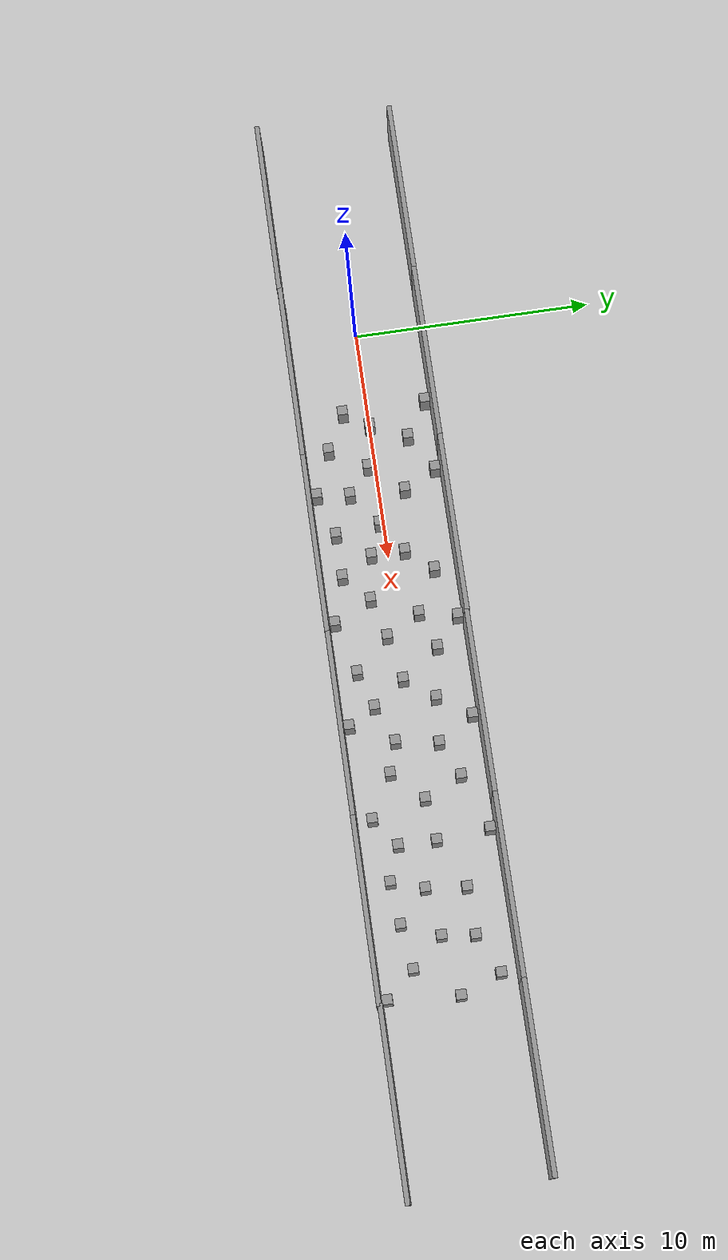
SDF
<sdf version="1.6">
 <world name="default">
  <plugin filename="gz-sim-physics-system" name="gz::sim::systems::Physics"/>
  <plugin filename="gz-sim-sensors-system" name="gz::sim::systems::Sensors">
   <render_engine>ogre2</render_engine>
  </plugin>
  <plugin filename="gz-sim-imu-system" name="gz::sim::systems::Imu"/>
  <plugin filename="gz-sim-scene-broadcaster-system" name="gz::sim::systems::SceneBroadcaster"/>
  <plugin filename="gz-sim-user-commands-system" name="gz::sim::systems::UserCommands"/>
  <light name="sun" type="directional">
   <pose>0 0 10 0 -0 0</pose>
   <diffuse>0.8 0.8 0.8 1</diffuse>
   <specular>0.2 0.2 0.2 1</specular>
   <attenuation>
    <range>1000</range>
    <constant>0.9</constant>
    <linear>0.01</linear>
    <quadratic>0.001</quadratic>
   </attenuation>
   <direction>-0.5 0.1 -0.9</direction>
  </light>
  <model name="ground_plane">
   <static>1</static>
   <link name="link">
    <collision name="collision">
     <geometry><plane><normal>0 0 1</normal><size>100 100</size></plane></geometry>
     <surface><friction><ode><mu>1000</mu><mu2>1000</mu2></ode></friction></surface>
    </collision>
    <visual name="visual">
     <cast_shadows>0</cast_shadows>
     <geometry><plane><normal>0 0 1</normal><size>100 100</size></plane></geometry>
     <material>
      <script><uri>file://media/materials/scripts/gazebo.material</uri><name>Gazebo/Grey</name></script>
     </material>
    </visual>
    <velocity_decay><linear>0</linear><angular>0</angular></velocity_decay>
   </link>
  </model>
  <physics name="default_physics" default="0" type="ode">
   <max_step_size>0.001</max_step_size>
   <real_time_factor>0.1</real_time_factor>
   <real_time_update_rate>100</real_time_update_rate>
  </physics>
  <scene><ambient>0.4 0.4 0.4 1</ambient><background>0.7 0.7 0.7 1</background><shadows>0</shadows></scene>
  <spherical_coordinates>
   <surface_model>EARTH_WGS84</surface_model>
   <latitude_deg>0</latitude_deg>
   <longitude_deg>0</longitude_deg>
   <elevation>0</elevation>
   <heading_deg>0</heading_deg>
  </spherical_coordinates>
  <model name="grey_wall">
   <static>1</static>
   <link name="link">
    <pose>0 0 1.4 0 -0 0</pose>
    <collision name="collision"><geometry><box><size>7.5 0.2 2.8</size></box></geometry></collision>
    <visual name="visual">
     <cast_shadows>0</cast_shadows>
     <geometry><box><size>7.5 0.2 2.8</size></box></geometry>
     <material>
      <script>
       <uri>model://grey_wall/materials/scripts</uri>
       <uri>model://grey_wall/materials/textures</uri>
       <name>vrc/grey_wall</name>
      </script>
     </material>
    </visual>
    <velocity_decay><linear>0</linear><angular>0</angular></velocity_decay>
   </link>
   <pose>17.1032 2.73796 0 0 -0 0</pose>
  </model>
  <model name="grey_wall_0">
   <static>1</static>
   <link name="link">
    <pose>0 0 1.4 0 -0 0</pose>
    <collision name="collision"><geometry><box><size>7.5 0.2 2.8</size></box></geometry></collision>
    <visual name="visual">
     <cast_shadows>0</cast_shadows>
     <geometry><box><size>7.5 0.2 2.8</size></box></geometry>
     <material>
      <script>
       <uri>model://grey_wall/materials/scripts</uri>
       <uri>model://grey_wall/materials/textures</uri>
       <name>vrc/grey_wall</name>
      </script>
     </material>
    </visual>
    <velocity_decay><linear>0</linear><angular>0</angular></velocity_decay>
   </link>
   <pose>17.2246 -2.87669 0 0 -0 0</pose>
  </model>
  <gravity>0 0 -9.8</gravity>
  <magnetic_field>6e-06 2.3e-05 -4.2e-05</magnetic_field>
  <atmosphere type="adiabatic"/>
  <model name="grey_wall_clone">
   <static>1</static>
   <link name="link">
    <pose>0 0 1.4 0 -0 0</pose>
    <collision name="collision"><geometry><box><size>7.5 0.2 2.8</size></box></geometry></collision>
    <visual name="visual">
     <cast_shadows>0</cast_shadows>
     <geometry><box><size>7.5 0.2 2.8</size></box></geometry>
     <material>
      <script>
       <uri>model://grey_wall/materials/scripts</uri>
       <uri>model://grey_wall/materials/textures</uri>
       <name>vrc/grey_wall</name>
      </script>
     </material>
    </visual>
    <velocity_decay><linear>0</linear><angular>0</angular></velocity_decay>
   </link>
   <pose>2.16529 2.76561 0 0 -0 0</pose>
  </model>
  <model name="grey_wall_clone_0">
   <static>1</static>
   <link name="link">
    <pose>0 0 1.4 0 -0 0</pose>
    <collision name="collision"><geometry><box><size>7.5 0.2 2.8</size></box></geometry></collision>
    <visual name="visual">
     <cast_shadows>0</cast_shadows>
     <geometry><box><size>7.5 0.2 2.8</size></box></geometry>
     <material>
      <script>
       <uri>model://grey_wall/materials/scripts</uri>
       <uri>model://grey_wall/materials/textures</uri>
       <name>vrc/grey_wall</name>
      </script>
     </material>
    </visual>
    <velocity_decay><linear>0</linear><angular>0</angular></velocity_decay>
   </link>
   <pose>2.23318 -2.88881 0 0 -0 0</pose>
  </model>
  <model name="grey_wall_clone_1">
   <static>1</static>
   <link name="link">
    <pose>0 0 1.4 0 -0 0</pose>
    <collision name="collision"><geometry><box><size>7.5 0.2 2.8</size></box></geometry></collision>
    <visual name="visual">
     <cast_shadows>0</cast_shadows>
     <geometry><box><size>7.5 0.2 2.8</size></box></geometry>
     <material>
      <script>
       <uri>model://grey_wall/materials/scripts</uri>
       <uri>model://grey_wall/materials/textures</uri>
       <name>vrc/grey_wall</name>
      </script>
     </material>
    </visual>
    <velocity_decay><linear>0</linear><angular>0</angular></velocity_decay>
   </link>
   <pose>9.72907 -2.8848 0 0 -0 0</pose>
  </model>
  <model name="grey_wall_clone_2">
   <static>1</static>
   <link name="link">
    <pose>0 0 1.4 0 -0 0</pose>
    <collision name="collision"><geometry><box><size>7.5 0.2 2.8</size></box></geometry></collision>
    <visual name="visual">
     <cast_shadows>0</cast_shadows>
     <geometry><box><size>7.5 0.2 2.8</size></box></geometry>
     <material>
      <script>
       <uri>model://grey_wall/materials/scripts</uri>
       <uri>model://grey_wall/materials/textures</uri>
       <name>vrc/grey_wall</name>
      </script>
     </material>
    </visual>
    <velocity_decay><linear>0</linear><angular>0</angular></velocity_decay>
   </link>
   <pose>9.64207 2.76067 0 0 -0 0</pose>
  </model>
  <model name="grey_wall_clone_3">
   <static>1</static>
   <link name="link">
    <pose>0 0 1.4 0 -0 0</pose>
    <collision name="collision"><geometry><box><size>7.5 0.2 2.8</size></box></geometry></collision>
    <visual name="visual">
     <cast_shadows>0</cast_shadows>
     <geometry><box><size>7.5 0.2 2.8</size></box></geometry>
     <material>
      <script>
       <uri>model://grey_wall/materials/scripts</uri>
       <uri>model://grey_wall/materials/textures</uri>
       <name>vrc/grey_wall</name>
      </script>
     </material>
    </visual>
    <velocity_decay><linear>0</linear><angular>0</angular></velocity_decay>
   </link>
   <pose>24.5861 2.73638 0 0 -0 0</pose>
  </model>
  <model name="grey_wall_clone_4">
   <static>1</static>
   <link name="link">
    <pose>0 0 1.4 0 -0 0</pose>
    <collision name="collision"><geometry><box><size>7.5 0.2 2.8</size></box></geometry></collision>
    <visual name="visual">
     <cast_shadows>0</cast_shadows>
     <geometry><box><size>7.5 0.2 2.8</size></box></geometry>
     <material>
      <script>
       <uri>model://grey_wall/materials/scripts</uri>
       <uri>model://grey_wall/materials/textures</uri>
       <name>vrc/grey_wall</name>
      </script>
     </material>
    </visual>
    <velocity_decay><linear>0</linear><angular>0</angular></velocity_decay>
   </link>
   <pose>24.6598 -2.88231 0 0 -0 0</pose>
  </model>
  <model name="unit_box_0">
   <pose>11.8117 -0.980013 0.500001 -1e-06 2e-06 -0.001371</pose>
   <link name="link">
    <inertial>
     <mass>1</mass>
     <inertia>
      <ixx>0.166667</ixx>
      <ixy>0</ixy>
      <ixz>0</ixz>
      <iyy>0.166667</iyy>
      <iyz>0</iyz>
      <izz>0.166667</izz>
     </inertia>
    </inertial>
    <collision name="collision"><geometry><box><size>0.392878 0.422643 1</size></box></geometry></collision>
    <visual name="visual">
     <geometry><box><size>0.392878 0.422643 1</size></box></geometry>
     <material>
      <script><name>Gazebo/Grey</name><uri>file://media/materials/scripts/gazebo.material</uri></script>
     </material>
    </visual>
   </link>
  </model>
  <model name="unit_box_0_clone">
   <pose>12.6731 0.892979 0.499999 -3e-06 3e-06 -0.000406</pose>
   <link name="link">
    <inertial>
     <mass>1</mass>
     <inertia>
      <ixx>0.166667</ixx>
      <ixy>0</ixy>
      <ixz>0</ixz>
      <iyy>0.166667</iyy>
      <iyz>0</iyz>
      <izz>0.166667</izz>
     </inertia>
    </inertial>
    <collision name="collision"><geometry><box><size>0.392878 0.422643 1</size></box></geometry></collision>
    <visual name="visual">
     <geometry><box><size>0.392878 0.422643 1</size></box></geometry>
     <material>
      <script><name>Gazebo/Grey</name><uri>file://media/materials/scripts/gazebo.material</uri></script>
     </material>
    </visual>
   </link>
  </model>
  <model name="unit_box_0_clone_3">
   <pose>5.18507 -1.83299 0.499999 4e-06 -3e-06 -0.000453</pose>
   <link name="link">
    <inertial>
     <mass>1</mass>
     <inertia>
      <ixx>0.166667</ixx>
      <ixy>0</ixy>
      <ixz>0</ixz>
      <iyy>0.166667</iyy>
      <iyz>0</iyz>
      <izz>0.166667</izz>
     </inertia>
    </inertial>
    <collision name="collision"><geometry><box><size>0.392878 0.422643 1</size></box></geometry></collision>
    <visual name="visual">
     <geometry><box><size>0.392878 0.422643 1</size></box></geometry>
     <material>
      <script><name>Gazebo/Grey</name><uri>file://media/materials/scripts/gazebo.material</uri></script>
     </material>
    </visual>
   </link>
  </model>
  <model name="unit_box_0_clone_5">
   <pose>5.02756 1.53336 0.500001 -2e-06 -1e-06 -0.000664</pose>
   <link name="link">
    <inertial>
     <mass>1</mass>
     <inertia>
      <ixx>0.166667</ixx>
      <ixy>0</ixy>
      <ixz>0</ixz>
      <iyy>0.166667</iyy>
      <iyz>0</iyz>
      <izz>0.166667</izz>
     </inertia>
    </inertial>
    <collision name="collision"><geometry><box><size>0.392878 0.422643 1</size></box></geometry></collision>
    <visual name="visual">
     <geometry><box><size>0.392878 0.422643 1</size></box></geometry>
     <material>
      <script><name>Gazebo/Grey</name><uri>file://media/materials/scripts/gazebo.material</uri></script>
     </material>
    </visual>
   </link>
  </model>
  <model name="unit_box_0_clone_5_clone">
   <pose>8.61983 -0.165361 0.499999 3e-06 3e-06 -0.000601</pose>
   <link name="link">
    <inertial>
     <mass>1</mass>
     <inertia>
      <ixx>0.166667</ixx>
      <ixy>0</ixy>
      <ixz>0</ixz>
      <iyy>0.166667</iyy>
      <iyz>0</iyz>
      <izz>0.166667</izz>
     </inertia>
    </inertial>
    <collision name="collision"><geometry><box><size>0.392878 0.422643 1</size></box></geometry></collision>
    <visual name="visual">
     <geometry><box><size>0.392878 0.422643 1</size></box></geometry>
     <material>
      <script><name>Gazebo/Grey</name><uri>file://media/materials/scripts/gazebo.material</uri></script>
     </material>
    </visual>
   </link>
  </model>
  <model name="unit_box_0_clone_5_clone_0">
   <pose>6.58177 2.44935 0.5 0 -0 0</pose>
   <link name="link">
    <inertial>
     <mass>1</mass>
     <inertia>
      <ixx>0.166667</ixx>
      <ixy>0</ixy>
      <ixz>0</ixz>
      <iyy>0.166667</iyy>
      <iyz>0</iyz>
      <izz>0.166667</izz>
     </inertia>
    </inertial>
    <collision name="collision"><geometry><box><size>0.392878 0.422643 1</size></box></geometry></collision>
    <visual name="visual">
     <geometry><box><size>0.392878 0.422643 1</size></box></geometry>
     <material>
      <script><name>Gazebo/Grey</name><uri>file://media/materials/scripts/gazebo.material</uri></script>
     </material>
    </visual>
   </link>
  </model>
  <model name="unit_box_0_clone_5_clone_1">
   <pose>7.31838 1.07986 0.500001 2e-06 -1e-06 -0.000382</pose>
   <link name="link">
    <inertial>
     <mass>1</mass>
     <inertia>
      <ixx>0.166667</ixx>
      <ixy>0</ixy>
      <ixz>0</ixz>
      <iyy>0.166667</iyy>
      <iyz>0</iyz>
      <izz>0.166667</izz>
     </inertia>
    </inertial>
    <collision name="collision"><geometry><box><size>0.392878 0.422643 1</size></box></geometry></collision>
    <visual name="visual">
     <geometry><box><size>0.392878 0.422643 1</size></box></geometry>
     <material>
      <script><name>Gazebo/Grey</name><uri>file://media/materials/scripts/gazebo.material</uri></script>
     </material>
    </visual>
   </link>
  </model>
  <model name="unit_box_0_clone_5_clone_2">
   <pose>9.95408 -0.687687 0.499999 2e-06 -4e-06 -0.00052</pose>
   <link name="link">
    <inertial>
     <mass>1</mass>
     <inertia>
      <ixx>0.166667</ixx>
      <ixy>0</ixy>
      <ixz>0</ixz>
      <iyy>0.166667</iyy>
      <iyz>0</iyz>
      <izz>0.166667</izz>
     </inertia>
    </inertial>
    <collision name="collision"><geometry><box><size>0.392878 0.422643 1</size></box></geometry></collision>
    <visual name="visual">
     <geometry><box><size>0.392878 0.422643 1</size></box></geometry>
     <material>
      <script><name>Gazebo/Grey</name><uri>file://media/materials/scripts/gazebo.material</uri></script>
     </material>
    </visual>
   </link>
  </model>
  <model name="unit_box_0_clone_5_clone_3">
   <pose>7.07881 -2.57348 0.5 0 -0 0</pose>
   <link name="link">
    <inertial>
     <mass>1</mass>
     <inertia>
      <ixx>0.166667</ixx>
      <ixy>0</ixy>
      <ixz>0</ixz>
      <iyy>0.166667</iyy>
      <iyz>0</iyz>
      <izz>0.166667</izz>
     </inertia>
    </inertial>
    <collision name="collision"><geometry><box><size>0.392878 0.422643 1</size></box></geometry></collision>
    <visual name="visual">
     <geometry><box><size>0.392878 0.422643 1</size></box></geometry>
     <material>
      <script><name>Gazebo/Grey</name><uri>file://media/materials/scripts/gazebo.material</uri></script>
     </material>
    </visual>
   </link>
  </model>
  <model name="unit_box_0_clone_5_clone_2_clone">
   <pose>3.5526 2.45429 0.5 0 -0 0</pose>
   <link name="link">
    <inertial>
     <mass>1</mass>
     <inertia>
      <ixx>0.166667</ixx>
      <ixy>0</ixy>
      <ixz>0</ixz>
      <iyy>0.166667</iyy>
      <iyz>0</iyz>
      <izz>0.166667</izz>
     </inertia>
    </inertial>
    <collision name="collision"><geometry><box><size>0.392878 0.422643 1</size></box></geometry></collision>
    <visual name="visual">
     <geometry><box><size>0.392878 0.422643 1</size></box></geometry>
     <material>
      <script><name>Gazebo/Grey</name><uri>file://media/materials/scripts/gazebo.material</uri></script>
     </material>
    </visual>
   </link>
  </model>
  <model name="unit_box_0_clone_5_clone_2_clone_0">
   <pose>9.9524 0.701033 0.499999 3e-06 -4e-06 -0.000564</pose>
   <link name="link">
    <inertial>
     <mass>1</mass>
     <inertia>
      <ixx>0.166667</ixx>
      <ixy>0</ixy>
      <ixz>0</ixz>
      <iyy>0.166667</iyy>
      <iyz>0</iyz>
      <izz>0.166667</izz>
     </inertia>
    </inertial>
    <collision name="collision"><geometry><box><size>0.392878 0.422643 1</size></box></geometry></collision>
    <visual name="visual">
     <geometry><box><size>0.392878 0.422643 1</size></box></geometry>
     <material>
      <script><name>Gazebo/Grey</name><uri>file://media/materials/scripts/gazebo.material</uri></script>
     </material>
    </visual>
   </link>
  </model>
  <model name="unit_box_0_clone_5_clone_2_clone_1">
   <pose>14.1985 1.43081 0.499999 3e-06 3e-06 -0.001049</pose>
   <link name="link">
    <inertial>
     <mass>1</mass>
     <inertia>
      <ixx>0.166667</ixx>
      <ixy>0</ixy>
      <ixz>0</ixz>
      <iyy>0.166667</iyy>
      <iyz>0</iyz>
      <izz>0.166667</izz>
     </inertia>
    </inertial>
    <collision name="collision"><geometry><box><size>0.392878 0.422643 1</size></box></geometry></collision>
    <visual name="visual">
     <geometry><box><size>0.392878 0.422643 1</size></box></geometry>
     <material>
      <script><name>Gazebo/Grey</name><uri>file://media/materials/scripts/gazebo.material</uri></script>
     </material>
    </visual>
   </link>
  </model>
  <model name="unit_box_0_clone_5_clone_2_clone_2">
   <pose>13.009 2.44935 0.5 0 -0 0</pose>
   <link name="link">
    <inertial>
     <mass>1</mass>
     <inertia>
      <ixx>0.166667</ixx>
      <ixy>0</ixy>
      <ixz>0</ixz>
      <iyy>0.166667</iyy>
      <iyz>0</iyz>
      <izz>0.166667</izz>
     </inertia>
    </inertial>
    <collision name="collision"><geometry><box><size>0.392878 0.422643 1</size></box></geometry></collision>
    <visual name="visual">
     <geometry><box><size>0.392878 0.422643 1</size></box></geometry>
     <material>
      <script><name>Gazebo/Grey</name><uri>file://media/materials/scripts/gazebo.material</uri></script>
     </material>
    </visual>
   </link>
  </model>
  <model name="unit_box_0_clone_5_clone_2_clone_3">
   <pose>10.6945 -1.996 0.499999 -4e-06 3e-06 -0.000271</pose>
   <link name="link">
    <inertial>
     <mass>1</mass>
     <inertia>
      <ixx>0.166667</ixx>
      <ixy>0</ixy>
      <ixz>0</ixz>
      <iyy>0.166667</iyy>
      <iyz>0</iyz>
      <izz>0.166667</izz>
     </inertia>
    </inertial>
    <collision name="collision"><geometry><box><size>0.392878 0.422643 1</size></box></geometry></collision>
    <visual name="visual">
     <geometry><box><size>0.392878 0.422643 1</size></box></geometry>
     <material>
      <script><name>Gazebo/Grey</name><uri>file://media/materials/scripts/gazebo.material</uri></script>
     </material>
    </visual>
   </link>
  </model>
  <model name="unit_box_0_clone_5_clone_2_clone_4">
   <pose>10.9017 1.79596 0.499999 4e-06 3e-06 -0.001183</pose>
   <link name="link">
    <inertial>
     <mass>1</mass>
     <inertia>
      <ixx>0.166667</ixx>
      <ixy>0</ixy>
      <ixz>0</ixz>
      <iyy>0.166667</iyy>
      <iyz>0</iyz>
      <izz>0.166667</izz>
     </inertia>
    </inertial>
    <collision name="collision"><geometry><box><size>0.392878 0.422643 1</size></box></geometry></collision>
    <visual name="visual">
     <geometry><box><size>0.392878 0.422643 1</size></box></geometry>
     <material>
      <script><name>Gazebo/Grey</name><uri>file://media/materials/scripts/gazebo.material</uri></script>
     </material>
    </visual>
   </link>
  </model>
  <model name="unit_box_0_clone_5_clone_2_clone_5">
   <pose>12.6126 -2.55694 0.499999 4e-06 -3e-06 -4.1e-05</pose>
   <link name="link">
    <inertial>
     <mass>1</mass>
     <inertia>
      <ixx>0.166667</ixx>
      <ixy>0</ixy>
      <ixz>0</ixz>
      <iyy>0.166667</iyy>
      <iyz>0</iyz>
      <izz>0.166667</izz>
     </inertia>
    </inertial>
    <collision name="collision"><geometry><box><size>0.392878 0.422643 1</size></box></geometry></collision>
    <visual name="visual">
     <geometry><box><size>0.392878 0.422643 1</size></box></geometry>
     <material>
      <script><name>Gazebo/Grey</name><uri>file://media/materials/scripts/gazebo.material</uri></script>
     </material>
    </visual>
   </link>
  </model>
  <model name="unit_box_0_clone_5_clone_2_clone_6">
   <pose>13.4663 -0.522278 0.500001 0 -2e-06 -0.000757</pose>
   <link name="link">
    <inertial>
     <mass>1</mass>
     <inertia>
      <ixx>0.166667</ixx>
      <ixy>0</ixy>
      <ixz>0</ixz>
      <iyy>0.166667</iyy>
      <iyz>0</iyz>
      <izz>0.166667</izz>
     </inertia>
    </inertial>
    <collision name="collision"><geometry><box><size>0.392878 0.422643 1</size></box></geometry></collision>
    <visual name="visual">
     <geometry><box><size>0.392878 0.422643 1</size></box></geometry>
     <material>
      <script><name>Gazebo/Grey</name><uri>file://media/materials/scripts/gazebo.material</uri></script>
     </material>
    </visual>
   </link>
  </model>
  <model name="unit_box_0_clone_3_clone">
   <pose>4.33794 0.01884 0.500001 -2e-06 1e-06 -0.000635</pose>
   <link name="link">
    <inertial>
     <mass>1</mass>
     <inertia>
      <ixx>0.166667</ixx>
      <ixy>0</ixy>
      <ixz>0</ixz>
      <iyy>0.166667</iyy>
      <iyz>0</iyz>
      <izz>0.166667</izz>
     </inertia>
    </inertial>
    <collision name="collision"><geometry><box><size>0.392878 0.422643 1</size></box></geometry></collision>
    <visual name="visual">
     <geometry><box><size>0.392878 0.422643 1</size></box></geometry>
     <material>
      <script><name>Gazebo/Grey</name><uri>file://media/materials/scripts/gazebo.material</uri></script>
     </material>
    </visual>
   </link>
  </model>
  <model name="unit_box_0_clone_3_clone_0">
   <pose>7.23497 -1.21039 0.499999 -4e-06 -3e-06 -0.000801</pose>
   <link name="link">
    <inertial>
     <mass>1</mass>
     <inertia>
      <ixx>0.166667</ixx>
      <ixy>0</ixy>
      <ixz>0</ixz>
      <iyy>0.166667</iyy>
      <iyz>0</iyz>
      <izz>0.166667</izz>
     </inertia>
    </inertial>
    <collision name="collision"><geometry><box><size>0.392878 0.422643 1</size></box></geometry></collision>
    <visual name="visual">
     <geometry><box><size>0.392878 0.422643 1</size></box></geometry>
     <material>
      <script><name>Gazebo/Grey</name><uri>file://media/materials/scripts/gazebo.material</uri></script>
     </material>
    </visual>
   </link>
  </model>
  <model name="unit_box_0_clone_3_clone_3">
   <pose>8.87398 -2.01335 0.499999 4e-06 2e-06 -0.000872</pose>
   <link name="link">
    <inertial>
     <mass>1</mass>
     <inertia>
      <ixx>0.166667</ixx>
      <ixy>0</ixy>
      <ixz>0</ixz>
      <iyy>0.166667</iyy>
      <iyz>0</iyz>
      <izz>0.166667</izz>
     </inertia>
    </inertial>
    <collision name="collision"><geometry><box><size>0.392878 0.422643 1</size></box></geometry></collision>
    <visual name="visual">
     <geometry><box><size>0.392878 0.422643 1</size></box></geometry>
     <material>
      <script><name>Gazebo/Grey</name><uri>file://media/materials/scripts/gazebo.material</uri></script>
     </material>
    </visual>
   </link>
  </model>
  <model name="unit_box_0_clone_3_clone_4">
   <pose>3.62381 -1.02676 0.499999 -4e-06 3e-06 -0.000435</pose>
   <link name="link">
    <inertial>
     <mass>1</mass>
     <inertia>
      <ixx>0.166667</ixx>
      <ixy>0</ixy>
      <ixz>0</ixz>
      <iyy>0.166667</iyy>
      <iyz>0</iyz>
      <izz>0.166667</izz>
     </inertia>
    </inertial>
    <collision name="collision"><geometry><box><size>0.392878 0.422643 1</size></box></geometry></collision>
    <visual name="visual">
     <geometry><box><size>0.392878 0.422643 1</size></box></geometry>
     <material>
      <script><name>Gazebo/Grey</name><uri>file://media/materials/scripts/gazebo.material</uri></script>
     </material>
    </visual>
   </link>
  </model>
  <model name="unit_box_0_clone_3_clone_5">
   <pose>6.1121 -0.294592 0.499999 -3e-06 4e-06 -0.001286</pose>
   <link name="link">
    <inertial>
     <mass>1</mass>
     <inertia>
      <ixx>0.166667</ixx>
      <ixy>0</ixy>
      <ixz>0</ixz>
      <iyy>0.166667</iyy>
      <iyz>0</iyz>
      <izz>0.166667</izz>
     </inertia>
    </inertial>
    <collision name="collision"><geometry><box><size>0.392878 0.422643 1</size></box></geometry></collision>
    <visual name="visual">
     <geometry><box><size>0.392878 0.422643 1</size></box></geometry>
     <material>
      <script><name>Gazebo/Grey</name><uri>file://media/materials/scripts/gazebo.material</uri></script>
     </material>
    </visual>
   </link>
  </model>
  <model name="unit_box_0_clone_5_clone_1_clone">
   <pose>14.7891 -1.94096 0.499999 -3e-06 4e-06 0.000488</pose>
   <link name="link">
    <inertial>
     <mass>1</mass>
     <inertia>
      <ixx>0.166667</ixx>
      <ixy>0</ixy>
      <ixz>0</ixz>
      <iyy>0.166667</iyy>
      <iyz>0</iyz>
      <izz>0.166667</izz>
     </inertia>
    </inertial>
    <collision name="collision"><geometry><box><size>0.392878 0.422643 1</size></box></geometry></collision>
    <visual name="visual">
     <geometry><box><size>0.392878 0.422643 1</size></box></geometry>
     <material>
      <script><name>Gazebo/Grey</name><uri>file://media/materials/scripts/gazebo.material</uri></script>
     </material>
    </visual>
   </link>
  </model>
  <model name="unit_box_0_clone_5_clone_1_clone_0">
   <pose>15.3391 -0.137115 0.500001 -1e-06 -2e-06 -0.000204</pose>
   <link name="link">
    <inertial>
     <mass>1</mass>
     <inertia>
      <ixx>0.166667</ixx>
      <ixy>0</ixy>
      <ixz>0</ixz>
      <iyy>0.166667</iyy>
      <iyz>0</iyz>
      <izz>0.166667</izz>
     </inertia>
    </inertial>
    <collision name="collision"><geometry><box><size>0.392878 0.422643 1</size></box></geometry></collision>
    <visual name="visual">
     <geometry><box><size>0.392878 0.422643 1</size></box></geometry>
     <material>
      <script><name>Gazebo/Grey</name><uri>file://media/materials/scripts/gazebo.material</uri></script>
     </material>
    </visual>
   </link>
  </model>
  <model name="unit_box_0_clone_5_clone_1_clone_1">
   <pose>16.2785 1.08296 0.499999 -2e-06 -4e-06 -0.000686</pose>
   <link name="link">
    <inertial>
     <mass>1</mass>
     <inertia>
      <ixx>0.166667</ixx>
      <ixy>0</ixy>
      <ixz>0</ixz>
      <iyy>0.166667</iyy>
      <iyz>0</iyz>
      <izz>0.166667</izz>
     </inertia>
    </inertial>
    <collision name="collision"><geometry><box><size>0.392878 0.422643 1</size></box></geometry></collision>
    <visual name="visual">
     <geometry><box><size>0.392878 0.422643 1</size></box></geometry>
     <material>
      <script><name>Gazebo/Grey</name><uri>file://media/materials/scripts/gazebo.material</uri></script>
     </material>
    </visual>
   </link>
  </model>
  <model name="unit_box_0_clone_5_clone_1_clone_3">
   <pose>18.1467 0.932998 0.499999 -4e-06 -2e-06 -0.000519</pose>
   <link name="link">
    <inertial>
     <mass>1</mass>
     <inertia>
      <ixx>0.166667</ixx>
      <ixy>0</ixy>
      <ixz>0</ixz>
      <iyy>0.166667</iyy>
      <iyz>0</iyz>
      <izz>0.166667</izz>
     </inertia>
    </inertial>
    <collision name="collision"><geometry><box><size>0.392878 0.422643 1</size></box></geometry></collision>
    <visual name="visual">
     <geometry><box><size>0.392878 0.422643 1</size></box></geometry>
     <material>
      <script><name>Gazebo/Grey</name><uri>file://media/materials/scripts/gazebo.material</uri></script>
     </material>
    </visual>
   </link>
  </model>
  <model name="unit_box_0_clone_5_clone_1_clone_4">
   <pose>16.309 -1.4438 0.499999 -4e-06 -3e-06 -0.000382</pose>
   <link name="link">
    <inertial>
     <mass>1</mass>
     <inertia>
      <ixx>0.166667</ixx>
      <ixy>0</ixy>
      <ixz>0</ixz>
      <iyy>0.166667</iyy>
      <iyz>0</iyz>
      <izz>0.166667</izz>
     </inertia>
    </inertial>
    <collision name="collision"><geometry><box><size>0.392878 0.422643 1</size></box></geometry></collision>
    <visual name="visual">
     <geometry><box><size>0.392878 0.422643 1</size></box></geometry>
     <material>
      <script><name>Gazebo/Grey</name><uri>file://media/materials/scripts/gazebo.material</uri></script>
     </material>
    </visual>
   </link>
  </model>
  <model name="unit_box_0_clone_5_clone_1_clone_5">
   <pose>17.8481 -0.810109 0.499999 4e-06 3e-06 -0.000389</pose>
   <link name="link">
    <inertial>
     <mass>1</mass>
     <inertia>
      <ixx>0.166667</ixx>
      <ixy>0</ixy>
      <ixz>0</ixz>
      <iyy>0.166667</iyy>
      <iyz>0</iyz>
      <izz>0.166667</izz>
     </inertia>
    </inertial>
    <collision name="collision"><geometry><box><size>0.392878 0.422643 1</size></box></geometry></collision>
    <visual name="visual">
     <geometry><box><size>0.392878 0.422643 1</size></box></geometry>
     <material>
      <script><name>Gazebo/Grey</name><uri>file://media/materials/scripts/gazebo.material</uri></script>
     </material>
    </visual>
   </link>
  </model>
  <model name="unit_box_0_clone_5_clone_1_clone_6">
   <pose>16.9711 -2.56537 0.5 0 -0 0</pose>
   <link name="link">
    <inertial>
     <mass>1</mass>
     <inertia>
      <ixx>0.166667</ixx>
      <ixy>0</ixy>
      <ixz>0</ixz>
      <iyy>0.166667</iyy>
      <iyz>0</iyz>
      <izz>0.166667</izz>
     </inertia>
    </inertial>
    <collision name="collision"><geometry><box><size>0.392878 0.422643 1</size></box></geometry></collision>
    <visual name="visual">
     <geometry><box><size>0.392878 0.422643 1</size></box></geometry>
     <material>
      <script><name>Gazebo/Grey</name><uri>file://media/materials/scripts/gazebo.material</uri></script>
     </material>
    </visual>
   </link>
  </model>
  <model name="unit_box_0_clone_5_clone_1_clone_11">
   <pose>17.1998 2.42664 0.5 0 -0 0</pose>
   <link name="link">
    <inertial>
     <mass>1</mass>
     <inertia>
      <ixx>0.166667</ixx>
      <ixy>0</ixy>
      <ixz>0</ixz>
      <iyy>0.166667</iyy>
      <iyz>0</iyz>
      <izz>0.166667</izz>
     </inertia>
    </inertial>
    <collision name="collision"><geometry><box><size>0.392878 0.422643 1</size></box></geometry></collision>
    <visual name="visual">
     <geometry><box><size>0.392878 0.422643 1</size></box></geometry>
     <material>
      <script><name>Gazebo/Grey</name><uri>file://media/materials/scripts/gazebo.material</uri></script>
     </material>
    </visual>
   </link>
  </model>
  <model name="unit_box_0_clone_5_clone_1_clone_13">
   <pose>20.3328 0.040004 0.499999 -3e-06 4e-06 -0.000296</pose>
   <link name="link">
    <inertial>
     <mass>1</mass>
     <inertia>
      <ixx>0.166667</ixx>
      <ixy>0</ixy>
      <ixz>0</ixz>
      <iyy>0.166667</iyy>
      <iyz>0</iyz>
      <izz>0.166667</izz>
     </inertia>
    </inertial>
    <collision name="collision"><geometry><box><size>0.392878 0.422643 1</size></box></geometry></collision>
    <visual name="visual">
     <geometry><box><size>0.392878 0.422643 1</size></box></geometry>
     <material>
      <script><name>Gazebo/Grey</name><uri>file://media/materials/scripts/gazebo.material</uri></script>
     </material>
    </visual>
   </link>
  </model>
  <model name="unit_box_0_clone_5_clone_1_clone_15">
   <pose>19.1136 -1.19795 0.499999 4e-06 3e-06 -0.000668</pose>
   <link name="link">
    <inertial>
     <mass>1</mass>
     <inertia>
      <ixx>0.166667</ixx>
      <ixy>0</ixy>
      <ixz>0</ixz>
      <iyy>0.166667</iyy>
      <iyz>0</iyz>
      <izz>0.166667</izz>
     </inertia>
    </inertial>
    <collision name="collision"><geometry><box><size>0.392878 0.422643 1</size></box></geometry></collision>
    <visual name="visual">
     <geometry><box><size>0.392878 0.422643 1</size></box></geometry>
     <material>
      <script><name>Gazebo/Grey</name><uri>file://media/materials/scripts/gazebo.material</uri></script>
     </material>
    </visual>
   </link>
  </model>
  <model name="unit_box_0_clone_5_clone_1_clone_17">
   <pose>20.8654 -2.16519 0.499999 3e-06 4e-06 -0.000425</pose>
   <link name="link">
    <inertial>
     <mass>1</mass>
     <inertia>
      <ixx>0.166667</ixx>
      <ixy>0</ixy>
      <ixz>0</ixz>
      <iyy>0.166667</iyy>
      <iyz>0</iyz>
      <izz>0.166667</izz>
     </inertia>
    </inertial>
    <collision name="collision"><geometry><box><size>0.392878 0.422643 1</size></box></geometry></collision>
    <visual name="visual">
     <geometry><box><size>0.392878 0.422643 1</size></box></geometry>
     <material>
      <script><name>Gazebo/Grey</name><uri>file://media/materials/scripts/gazebo.material</uri></script>
     </material>
    </visual>
   </link>
  </model>
  <model name="unit_box_0_clone_5_clone_1_clone_18">
   <pose>22.0416 -1.2973 0.500001 -0 2e-06 -0.000294</pose>
   <link name="link">
    <inertial>
     <mass>1</mass>
     <inertia>
      <ixx>0.166667</ixx>
      <ixy>0</ixy>
      <ixz>0</ixz>
      <iyy>0.166667</iyy>
      <iyz>0</iyz>
      <izz>0.166667</izz>
     </inertia>
    </inertial>
    <collision name="collision"><geometry><box><size>0.392878 0.422643 1</size></box></geometry></collision>
    <visual name="visual">
     <geometry><box><size>0.392878 0.422643 1</size></box></geometry>
     <material>
      <script><name>Gazebo/Grey</name><uri>file://media/materials/scripts/gazebo.material</uri></script>
     </material>
    </visual>
   </link>
  </model>
  <model name="unit_box_0_clone_5_clone_1_clone_19">
   <pose>22.0564 0.253764 0.499999 -3e-06 -3e-06 -0.000778</pose>
   <link name="link">
    <inertial>
     <mass>1</mass>
     <inertia>
      <ixx>0.166667</ixx>
      <ixy>0</ixy>
      <ixz>0</ixz>
      <iyy>0.166667</iyy>
      <iyz>0</iyz>
      <izz>0.166667</izz>
     </inertia>
    </inertial>
    <collision name="collision"><geometry><box><size>0.392878 0.422643 1</size></box></geometry></collision>
    <visual name="visual">
     <geometry><box><size>0.392878 0.422643 1</size></box></geometry>
     <material>
      <script><name>Gazebo/Grey</name><uri>file://media/materials/scripts/gazebo.material</uri></script>
     </material>
    </visual>
   </link>
  </model>
  <model name="unit_box_0_clone_5_clone_1_clone_20">
   <pose>19.599 1.60135 0.499999 -4e-06 -3e-06 -0.000359</pose>
   <link name="link">
    <inertial>
     <mass>1</mass>
     <inertia>
      <ixx>0.166667</ixx>
      <ixy>0</ixy>
      <ixz>0</ixz>
      <iyy>0.166667</iyy>
      <iyz>0</iyz>
      <izz>0.166667</izz>
     </inertia>
    </inertial>
    <collision name="collision"><geometry><box><size>0.392878 0.422643 1</size></box></geometry></collision>
    <visual name="visual">
     <geometry><box><size>0.392878 0.422643 1</size></box></geometry>
     <material>
      <script><name>Gazebo/Grey</name><uri>file://media/materials/scripts/gazebo.material</uri></script>
     </material>
    </visual>
   </link>
  </model>
  <model name="unit_box_0_clone_5_clone_1_clone_21">
   <pose>21.8741 2.42506 0.5 0 -0 0</pose>
   <link name="link">
    <inertial>
     <mass>1</mass>
     <inertia>
      <ixx>0.166667</ixx>
      <ixy>0</ixy>
      <ixz>0</ixz>
      <iyy>0.166667</iyy>
      <iyz>0</iyz>
      <izz>0.166667</izz>
     </inertia>
    </inertial>
    <collision name="collision"><geometry><box><size>0.392878 0.422643 1</size></box></geometry></collision>
    <visual name="visual">
     <geometry><box><size>0.392878 0.422643 1</size></box></geometry>
     <material>
      <script><name>Gazebo/Grey</name><uri>file://media/materials/scripts/gazebo.material</uri></script>
     </material>
    </visual>
   </link>
  </model>
  <model name="unit_box_0_clone_5_clone_1_clone_22">
   <pose>24.0815 1.17576 0.499999 4e-06 3e-06 -0.000581</pose>
   <link name="link">
    <inertial>
     <mass>1</mass>
     <inertia>
      <ixx>0.166667</ixx>
      <ixy>0</ixy>
      <ixz>0</ixz>
      <iyy>0.166667</iyy>
      <iyz>0</iyz>
      <izz>0.166667</izz>
     </inertia>
    </inertial>
    <collision name="collision"><geometry><box><size>0.392878 0.422643 1</size></box></geometry></collision>
    <visual name="visual">
     <geometry><box><size>0.392878 0.422643 1</size></box></geometry>
     <material>
      <script><name>Gazebo/Grey</name><uri>file://media/materials/scripts/gazebo.material</uri></script>
     </material>
    </visual>
   </link>
  </model>
  <model name="unit_box_0_clone_5_clone_1_clone_23">
   <pose>23.8929 -0.471724 0.500001 -1e-06 -2e-06 -0.000311</pose>
   <link name="link">
    <inertial>
     <mass>1</mass>
     <inertia>
      <ixx>0.166667</ixx>
      <ixy>0</ixy>
      <ixz>0</ixz>
      <iyy>0.166667</iyy>
      <iyz>0</iyz>
      <izz>0.166667</izz>
     </inertia>
    </inertial>
    <collision name="collision"><geometry><box><size>0.392878 0.422643 1</size></box></geometry></collision>
    <visual name="visual">
     <geometry><box><size>0.392878 0.422643 1</size></box></geometry>
     <material>
      <script><name>Gazebo/Grey</name><uri>file://media/materials/scripts/gazebo.material</uri></script>
     </material>
    </visual>
   </link>
  </model>
  <model name="unit_box_0_clone_5_clone_1_clone_25">
   <pose>23.4528 -1.8048 0.499999 -3e-06 -4e-06 -0.000871</pose>
   <link name="link">
    <inertial>
     <mass>1</mass>
     <inertia>
      <ixx>0.166667</ixx>
      <ixy>0</ixy>
      <ixz>0</ixz>
      <iyy>0.166667</iyy>
      <iyz>0</iyz>
      <izz>0.166667</izz>
     </inertia>
    </inertial>
    <collision name="collision"><geometry><box><size>0.392878 0.422643 1</size></box></geometry></collision>
    <visual name="visual">
     <geometry><box><size>0.392878 0.422643 1</size></box></geometry>
     <material>
      <script><name>Gazebo/Grey</name><uri>file://media/materials/scripts/gazebo.material</uri></script>
     </material>
    </visual>
   </link>
  </model>
  <model name="unit_box_0_clone_5_clone_1_clone_26">
   <pose>25.1725 -1.64232 0.500001 1e-06 -2e-06 -0.000441</pose>
   <link name="link">
    <inertial>
     <mass>1</mass>
     <inertia>
      <ixx>0.166667</ixx>
      <ixy>0</ixy>
      <ixz>0</ixz>
      <iyy>0.166667</iyy>
      <iyz>0</iyz>
      <izz>0.166667</izz>
     </inertia>
    </inertial>
    <collision name="collision"><geometry><box><size>0.392878 0.422643 1</size></box></geometry></collision>
    <visual name="visual">
     <geometry><box><size>0.392878 0.422643 1</size></box></geometry>
     <material>
      <script><name>Gazebo/Grey</name><uri>file://media/materials/scripts/gazebo.material</uri></script>
     </material>
    </visual>
   </link>
  </model>
  <model name="unit_box_0_clone_5_clone_1_clone_27">
   <pose>25.8285 -0.105684 0.500001 2e-06 -1e-06 -0.000215</pose>
   <link name="link">
    <inertial>
     <mass>1</mass>
     <inertia>
      <ixx>0.166667</ixx>
      <ixy>0</ixy>
      <ixz>0</ixz>
      <iyy>0.166667</iyy>
      <iyz>0</iyz>
      <izz>0.166667</izz>
     </inertia>
    </inertial>
    <collision name="collision"><geometry><box><size>0.392878 0.422643 1</size></box></geometry></collision>
    <visual name="visual">
     <geometry><box><size>0.392878 0.422643 1</size></box></geometry>
     <material>
      <script><name>Gazebo/Grey</name><uri>file://media/materials/scripts/gazebo.material</uri></script>
     </material>
    </visual>
   </link>
  </model>
  <model name="unit_box_0_clone_5_clone_1_clone_28">
   <pose>26.973 -1.39603 0.500001 2e-06 -1e-06 -0.000629</pose>
   <link name="link">
    <inertial>
     <mass>1</mass>
     <inertia>
      <ixx>0.166667</ixx>
      <ixy>0</ixy>
      <ixz>0</ixz>
      <iyy>0.166667</iyy>
      <iyz>0</iyz>
      <izz>0.166667</izz>
     </inertia>
    </inertial>
    <collision name="collision"><geometry><box><size>0.392878 0.422643 1</size></box></geometry></collision>
    <visual name="visual">
     <geometry><box><size>0.392878 0.422643 1</size></box></geometry>
     <material>
      <script><name>Gazebo/Grey</name><uri>file://media/materials/scripts/gazebo.material</uri></script>
     </material>
    </visual>
   </link>
  </model>
  <model name="unit_box_0_clone_5_clone_1_clone_29">
   <pose>28.0189 -2.57099 0.5 0 -0 0</pose>
   <link name="link">
    <inertial>
     <mass>1</mass>
     <inertia>
      <ixx>0.166667</ixx>
      <ixy>0</ixy>
      <ixz>0</ixz>
      <iyy>0.166667</iyy>
      <iyz>0</iyz>
      <izz>0.166667</izz>
     </inertia>
    </inertial>
    <collision name="collision"><geometry><box><size>0.392878 0.422643 1</size></box></geometry></collision>
    <visual name="visual">
     <geometry><box><size>0.392878 0.422643 1</size></box></geometry>
     <material>
      <script><name>Gazebo/Grey</name><uri>file://media/materials/scripts/gazebo.material</uri></script>
     </material>
    </visual>
   </link>
  </model>
  <model name="unit_box_0_clone_5_clone_1_clone_32">
   <pose>25.994 1.22939 0.499999 3e-06 -4e-06 -0.000621</pose>
   <link name="link">
    <inertial>
     <mass>1</mass>
     <inertia>
      <ixx>0.166667</ixx>
      <ixy>0</ixy>
      <ixz>0</ixz>
      <iyy>0.166667</iyy>
      <iyz>0</iyz>
      <izz>0.166667</izz>
     </inertia>
    </inertial>
    <collision name="collision"><geometry><box><size>0.392878 0.422643 1</size></box></geometry></collision>
    <visual name="visual">
     <geometry><box><size>0.392878 0.422643 1</size></box></geometry>
     <material>
      <script><name>Gazebo/Grey</name><uri>file://media/materials/scripts/gazebo.material</uri></script>
     </material>
    </visual>
   </link>
  </model>
  <model name="unit_box_0_clone_5_clone_1_clone_34">
   <pose>27.6033 1.99552 0.499999 3e-06 4e-06 -0.00069</pose>
   <link name="link">
    <inertial>
     <mass>1</mass>
     <inertia>
      <ixx>0.166667</ixx>
      <ixy>0</ixy>
      <ixz>0</ixz>
      <iyy>0.166667</iyy>
      <iyz>0</iyz>
      <izz>0.166667</izz>
     </inertia>
    </inertial>
    <collision name="collision"><geometry><box><size>0.392878 0.422643 1</size></box></geometry></collision>
    <visual name="visual">
     <geometry><box><size>0.392878 0.422643 1</size></box></geometry>
     <material>
      <script><name>Gazebo/Grey</name><uri>file://media/materials/scripts/gazebo.material</uri></script>
     </material>
    </visual>
   </link>
  </model>
  <model name="unit_box_0_clone_5_clone_1_clone_35">
   <pose>28.2443 0.316154 0.499999 -5e-06 -2e-06 -0.00055</pose>
   <link name="link">
    <inertial>
     <mass>1</mass>
     <inertia>
      <ixx>0.166667</ixx>
      <ixy>0</ixy>
      <ixz>0</ixz>
      <iyy>0.166667</iyy>
      <iyz>0</iyz>
      <izz>0.166667</izz>
     </inertia>
    </inertial>
    <collision name="collision"><geometry><box><size>0.392878 0.422643 1</size></box></geometry></collision>
    <visual name="visual">
     <geometry><box><size>0.392878 0.422643 1</size></box></geometry>
     <material>
      <script><name>Gazebo/Grey</name><uri>file://media/materials/scripts/gazebo.material</uri></script>
     </material>
    </visual>
   </link>
  </model>
  <model name="grey_wall_clone_0_clone">
   <static>1</static>
   <link name="link">
    <pose>0 0 1.4 0 -0 0</pose>
    <collision name="collision"><geometry><box><size>7.5 0.2 2.8</size></box></geometry></collision>
    <visual name="visual">
     <cast_shadows>0</cast_shadows>
     <geometry><box><size>7.5 0.2 2.8</size></box></geometry>
     <material>
      <script>
       <uri>model://grey_wall/materials/scripts</uri>
       <uri>model://grey_wall/materials/textures</uri>
       <name>vrc/grey_wall</name>
      </script>
     </material>
    </visual>
    <velocity_decay><linear>0</linear><angular>0</angular></velocity_decay>
   </link>
   <pose>32.0569 -2.84159 0 0 -0 0</pose>
  </model>
  <model name="grey_wall_clone_0_clone_0">
   <static>1</static>
   <link name="link">
    <pose>0 0 1.4 0 -0 0</pose>
    <collision name="collision"><geometry><box><size>7.5 0.2 2.8</size></box></geometry></collision>
    <visual name="visual">
     <cast_shadows>0</cast_shadows>
     <geometry><box><size>7.5 0.2 2.8</size></box></geometry>
     <material>
      <script>
       <uri>model://grey_wall/materials/scripts</uri>
       <uri>model://grey_wall/materials/textures</uri>
       <name>vrc/grey_wall</name>
      </script>
     </material>
    </visual>
    <velocity_decay><linear>0</linear><angular>0</angular></velocity_decay>
   </link>
   <pose>31.8774 2.7338 0 0 -0 0</pose>
  </model>
  <model name="grey_wall_clone_0_clone_1">
   <static>1</static>
   <link name="link">
    <pose>0 0 1.4 0 -0 0</pose>
    <collision name="collision"><geometry><box><size>7.5 0.2 2.8</size></box></geometry></collision>
    <visual name="visual">
     <cast_shadows>0</cast_shadows>
     <geometry><box><size>7.5 0.2 2.8</size></box></geometry>
     <material>
      <script>
       <uri>model://grey_wall/materials/scripts</uri>
       <uri>model://grey_wall/materials/textures</uri>
       <name>vrc/grey_wall</name>
      </script>
     </material>
    </visual>
    <velocity_decay><linear>0</linear><angular>0</angular></velocity_decay>
   </link>
   <pose>-5.16563 -2.90793 0 0 -0 0</pose>
  </model>
  <model name="grey_wall_clone_0_clone_2">
   <static>1</static>
   <link name="link">
    <pose>0 0 1.4 0 -0 0</pose>
    <collision name="collision"><geometry><box><size>7.5 0.2 2.8</size></box></geometry></collision>
    <visual name="visual">
     <cast_shadows>0</cast_shadows>
     <geometry><box><size>7.5 0.2 2.8</size></box></geometry>
     <material>
      <script>
       <uri>model://grey_wall/materials/scripts</uri>
       <uri>model://grey_wall/materials/textures</uri>
       <name>vrc/grey_wall</name>
      </script>
     </material>
    </visual>
    <velocity_decay><linear>0</linear><angular>0</angular></velocity_decay>
   </link>
   <pose>-5.31351 2.77236 0 0 -0 0</pose>
  </model>
 </world>
</sdf>
